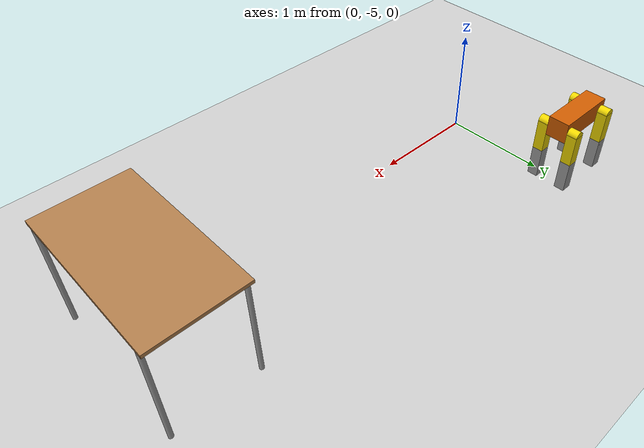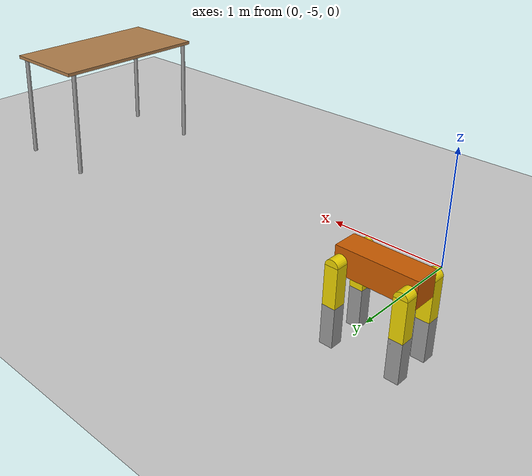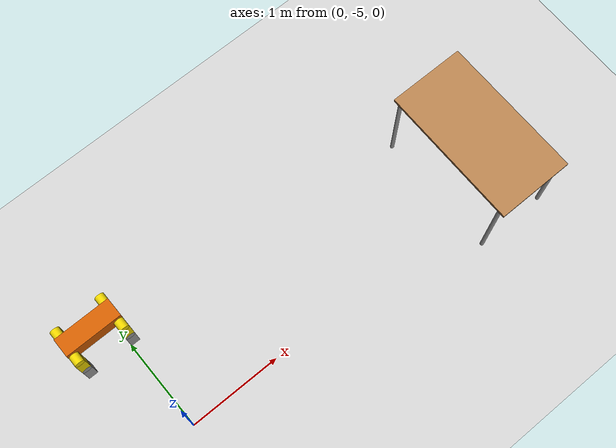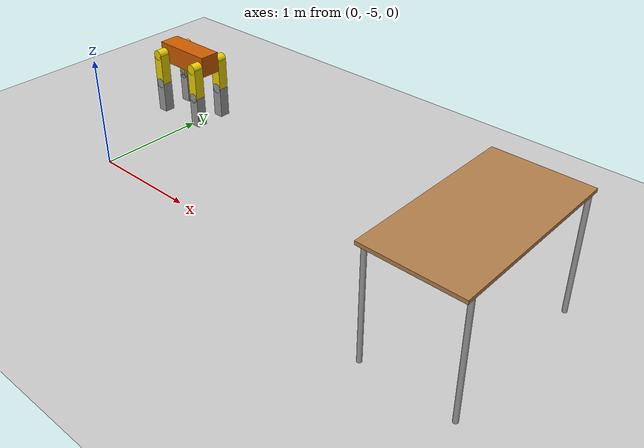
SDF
<sdf version="1.6">
 <world name="default">
  <model name="ground_plane">
   <static>1</static>
   <link name="link">
    <collision name="collision">
     <geometry><plane><normal>0 0 1</normal><size>100 100</size></plane></geometry>
     <surface>
      <contact><collide_bitmask>65535</collide_bitmask></contact>
      <friction><ode><mu>100</mu><mu2>50</mu2></ode></friction>
     </surface>
    </collision>
    <visual name="visual">
     <cast_shadows>0</cast_shadows>
     <geometry><plane><normal>0 0 1</normal><size>100 100</size></plane></geometry>
     <material>
      <script><uri>file://media/materials/scripts/gazebo.material</uri><name>Gazebo/Grey</name></script>
     </material>
    </visual>
   </link>
  </model>
  <model name="dog_robot_clone">
   <link name="link_0">
    <inertial>
     <mass>28.2</mass>
     <inertia><ixx>0.188</ixx><ixy>0</ixy><ixz>0</ixz><iyy>0.94</iyy><iyz>0</iyz><izz>0.94</izz></inertia>
    </inertial>
    <pose>1.24337 -0.641078 0.247843 0 -0 0</pose>
    <visual name="visual">
     <geometry><box><size>0.6 0.2 0.2</size></box></geometry>
     <material>
      <lighting>1</lighting>
      <script><uri>file://media/materials/scripts/gazebo.material</uri><name>Gazebo/Grey</name></script>
      <shader type="pixel"><normal_map>__default__</normal_map></shader>
      <ambient>0.808 0.361 0 1</ambient>
      <diffuse>0.808 0.361 0 1</diffuse>
      <specular>0.808 0.361 0 1</specular>
      <emissive>0 0 0 1</emissive>
     </material>
    </visual>
    <collision name="collision">
     <geometry><box><size>0.6 0.2 0.2</size></box></geometry>
     <surface>
      <friction>
       <ode><mu>1</mu><mu2>1</mu2><fdir1>0 0 0</fdir1><slip1>0</slip1><slip2>0</slip2></ode>
       <torsional>
        <coefficient>1</coefficient>
        <patch_radius>0</patch_radius>
        <surface_radius>0</surface_radius>
        <use_patch_radius>1</use_patch_radius>
        <ode><slip>0</slip></ode>
       </torsional>
      </friction>
      <bounce><restitution_coefficient>0</restitution_coefficient><threshold>1e+06</threshold></bounce>
      <contact>
       <collide_without_contact>0</collide_without_contact>
       <collide_without_contact_bitmask>1</collide_without_contact_bitmask>
       <collide_bitmask>1</collide_bitmask>
       <ode>
        <soft_cfm>0</soft_cfm>
        <soft_erp>0.2</soft_erp>
        <kp>1e+13</kp>
        <kd>1</kd>
        <max_vel>0.01</max_vel>
        <min_depth>0</min_depth>
       </ode>
       <bullet>
        <split_impulse>1</split_impulse>
        <split_impulse_penetration_threshold>-0.01</split_impulse_penetration_threshold>
        <soft_cfm>0</soft_cfm>
        <soft_erp>0.2</soft_erp>
        <kp>1e+13</kp>
        <kd>1</kd>
       </bullet>
      </contact>
     </surface>
    </collision>
   </link>
   <link name="link_1">
    <inertial>
     <mass>0.922843</mass>
     <inertia>
      <ixx>0.00134581</ixx>
      <ixy>0</ixy>
      <ixz>0</ixz>
      <iyy>0.00134581</iyy>
      <iyz>0</iyz>
      <izz>0.00115355</izz>
     </inertia>
    </inertial>
    <pose>1.49337 -0.791078 0.247843 1.5707 -0 0</pose>
    <visual name="visual">
     <geometry><cylinder><radius>0.05</radius><length>0.1</length></cylinder></geometry>
     <material>
      <lighting>1</lighting>
      <script><uri>file://media/materials/scripts/gazebo.material</uri><name>Gazebo/Grey</name></script>
      <shader type="pixel"><normal_map>__default__</normal_map></shader>
      <ambient>0.929 0.831 0 1</ambient>
      <diffuse>0.929 0.831 0 1</diffuse>
      <specular>0.929 0.831 0 1</specular>
      <emissive>0 0 0 1</emissive>
     </material>
    </visual>
    <collision name="collision">
     <geometry><cylinder><radius>0.05</radius><length>0.1</length></cylinder></geometry>
     <surface>
      <friction>
       <ode><mu>1</mu><mu2>1</mu2><fdir1>0 0 0</fdir1><slip1>0</slip1><slip2>0</slip2></ode>
       <torsional>
        <coefficient>1</coefficient>
        <patch_radius>0</patch_radius>
        <surface_radius>0</surface_radius>
        <use_patch_radius>1</use_patch_radius>
        <ode><slip>0</slip></ode>
       </torsional>
      </friction>
      <bounce><restitution_coefficient>0</restitution_coefficient><threshold>1e+06</threshold></bounce>
      <contact>
       <collide_without_contact>0</collide_without_contact>
       <collide_without_contact_bitmask>1</collide_without_contact_bitmask>
       <collide_bitmask>1</collide_bitmask>
       <ode>
        <soft_cfm>0</soft_cfm>
        <soft_erp>0.2</soft_erp>
        <kp>1e+13</kp>
        <kd>1</kd>
        <max_vel>0.01</max_vel>
        <min_depth>0</min_depth>
       </ode>
       <bullet>
        <split_impulse>1</split_impulse>
        <split_impulse_penetration_threshold>-0.01</split_impulse_penetration_threshold>
        <soft_cfm>0</soft_cfm>
        <soft_erp>0.2</soft_erp>
        <kp>1e+13</kp>
        <kd>1</kd>
       </bullet>
      </contact>
     </surface>
    </collision>
   </link>
   <link name="link_1_clone">
    <inertial>
     <mass>0.922843</mass>
     <inertia>
      <ixx>0.00134581</ixx>
      <ixy>0</ixy>
      <ixz>0</ixz>
      <iyy>0.00134581</iyy>
      <iyz>0</iyz>
      <izz>0.00115355</izz>
     </inertia>
    </inertial>
    <pose>0.993372 -0.491078 0.247843 1.5707 -0 0</pose>
    <visual name="visual">
     <geometry><cylinder><radius>0.05</radius><length>0.1</length></cylinder></geometry>
     <material>
      <lighting>1</lighting>
      <script><uri>file://media/materials/scripts/gazebo.material</uri><name>Gazebo/Grey</name></script>
      <shader type="pixel"><normal_map>__default__</normal_map></shader>
      <ambient>0.929 0.831 0 1</ambient>
      <diffuse>0.929 0.831 0 1</diffuse>
      <specular>0.929 0.831 0 1</specular>
      <emissive>0 0 0 1</emissive>
     </material>
    </visual>
    <collision name="collision">
     <geometry><cylinder><radius>0.05</radius><length>0.1</length></cylinder></geometry>
     <surface>
      <friction>
       <ode><mu>1</mu><mu2>1</mu2><fdir1>0 0 0</fdir1><slip1>0</slip1><slip2>0</slip2></ode>
       <torsional>
        <coefficient>1</coefficient>
        <patch_radius>0</patch_radius>
        <surface_radius>0</surface_radius>
        <use_patch_radius>1</use_patch_radius>
        <ode><slip>0</slip></ode>
       </torsional>
      </friction>
      <bounce><restitution_coefficient>0</restitution_coefficient><threshold>1e+06</threshold></bounce>
      <contact>
       <collide_without_contact>0</collide_without_contact>
       <collide_without_contact_bitmask>1</collide_without_contact_bitmask>
       <collide_bitmask>1</collide_bitmask>
       <ode>
        <soft_cfm>0</soft_cfm>
        <soft_erp>0.2</soft_erp>
        <kp>1e+13</kp>
        <kd>1</kd>
        <max_vel>0.01</max_vel>
        <min_depth>0</min_depth>
       </ode>
       <bullet>
        <split_impulse>1</split_impulse>
        <split_impulse_penetration_threshold>-0.01</split_impulse_penetration_threshold>
        <soft_cfm>0</soft_cfm>
        <soft_erp>0.2</soft_erp>
        <kp>1e+13</kp>
        <kd>1</kd>
       </bullet>
      </contact>
     </surface>
    </collision>
   </link>
   <link name="link_1_clone_0">
    <inertial>
     <mass>0.922843</mass>
     <inertia>
      <ixx>0.00134581</ixx>
      <ixy>0</ixy>
      <ixz>0</ixz>
      <iyy>0.00134581</iyy>
      <iyz>0</iyz>
      <izz>0.00115355</izz>
     </inertia>
    </inertial>
    <pose>0.993372 -0.791078 0.247843 1.5707 -0 0</pose>
    <visual name="visual">
     <geometry><cylinder><radius>0.05</radius><length>0.1</length></cylinder></geometry>
     <material>
      <lighting>1</lighting>
      <script><uri>file://media/materials/scripts/gazebo.material</uri><name>Gazebo/Grey</name></script>
      <shader type="pixel"><normal_map>__default__</normal_map></shader>
      <ambient>0.929 0.831 0 1</ambient>
      <diffuse>0.929 0.831 0 1</diffuse>
      <specular>0.929 0.831 0 1</specular>
      <emissive>0 0 0 1</emissive>
     </material>
    </visual>
    <collision name="collision">
     <geometry><cylinder><radius>0.05</radius><length>0.1</length></cylinder></geometry>
     <surface>
      <friction>
       <ode><mu>1</mu><mu2>1</mu2><fdir1>0 0 0</fdir1><slip1>0</slip1><slip2>0</slip2></ode>
       <torsional>
        <coefficient>1</coefficient>
        <patch_radius>0</patch_radius>
        <surface_radius>0</surface_radius>
        <use_patch_radius>1</use_patch_radius>
        <ode><slip>0</slip></ode>
       </torsional>
      </friction>
      <bounce><restitution_coefficient>0</restitution_coefficient><threshold>1e+06</threshold></bounce>
      <contact>
       <collide_without_contact>0</collide_without_contact>
       <collide_without_contact_bitmask>1</collide_without_contact_bitmask>
       <collide_bitmask>1</collide_bitmask>
       <ode>
        <soft_cfm>0</soft_cfm>
        <soft_erp>0.2</soft_erp>
        <kp>1e+13</kp>
        <kd>1</kd>
        <max_vel>0.01</max_vel>
        <min_depth>0</min_depth>
       </ode>
       <bullet>
        <split_impulse>1</split_impulse>
        <split_impulse_penetration_threshold>-0.01</split_impulse_penetration_threshold>
        <soft_cfm>0</soft_cfm>
        <soft_erp>0.2</soft_erp>
        <kp>1e+13</kp>
        <kd>1</kd>
       </bullet>
      </contact>
     </surface>
    </collision>
   </link>
   <link name="link_1_clone_1">
    <inertial>
     <mass>0.922843</mass>
     <inertia>
      <ixx>0.00134581</ixx>
      <ixy>0</ixy>
      <ixz>0</ixz>
      <iyy>0.00134581</iyy>
      <iyz>0</iyz>
      <izz>0.00115355</izz>
     </inertia>
    </inertial>
    <pose>1.49337 -0.491078 0.247843 1.5707 -0 0</pose>
    <visual name="visual">
     <geometry><cylinder><radius>0.05</radius><length>0.1</length></cylinder></geometry>
     <material>
      <lighting>1</lighting>
      <script><uri>file://media/materials/scripts/gazebo.material</uri><name>Gazebo/Grey</name></script>
      <shader type="pixel"><normal_map>__default__</normal_map></shader>
      <ambient>0.929 0.831 0 1</ambient>
      <diffuse>0.929 0.831 0 1</diffuse>
      <specular>0.929 0.831 0 1</specular>
      <emissive>0 0 0 1</emissive>
     </material>
    </visual>
    <collision name="collision">
     <geometry><cylinder><radius>0.05</radius><length>0.1</length></cylinder></geometry>
     <surface>
      <friction>
       <ode><mu>1</mu><mu2>1</mu2><fdir1>0 0 0</fdir1><slip1>0</slip1><slip2>0</slip2></ode>
       <torsional>
        <coefficient>1</coefficient>
        <patch_radius>0</patch_radius>
        <surface_radius>0</surface_radius>
        <use_patch_radius>1</use_patch_radius>
        <ode><slip>0</slip></ode>
       </torsional>
      </friction>
      <bounce><restitution_coefficient>0</restitution_coefficient><threshold>1e+06</threshold></bounce>
      <contact>
       <collide_without_contact>0</collide_without_contact>
       <collide_without_contact_bitmask>1</collide_without_contact_bitmask>
       <collide_bitmask>1</collide_bitmask>
       <ode>
        <soft_cfm>0</soft_cfm>
        <soft_erp>0.2</soft_erp>
        <kp>1e+13</kp>
        <kd>1</kd>
        <max_vel>0.01</max_vel>
        <min_depth>0</min_depth>
       </ode>
       <bullet>
        <split_impulse>1</split_impulse>
        <split_impulse_penetration_threshold>-0.01</split_impulse_penetration_threshold>
        <soft_cfm>0</soft_cfm>
        <soft_erp>0.2</soft_erp>
        <kp>1e+13</kp>
        <kd>1</kd>
       </bullet>
      </contact>
     </surface>
    </collision>
   </link>
   <link name="link_2">
    <inertial>
     <mass>3.525</mass>
     <inertia>
      <ixx>0.029375</ixx>
      <ixy>0</ixy>
      <ixz>0</ixz>
      <iyy>0.005875</iyy>
      <iyz>0</iyz>
      <izz>0.029375</izz>
     </inertia>
    </inertial>
    <pose>1.49337 -0.791092 0.097844 1.5707 -0 0</pose>
    <visual name="visual">
     <geometry><box><size>0.1 0.3 0.1</size></box></geometry>
     <material>
      <lighting>1</lighting>
      <script><uri>file://media/materials/scripts/gazebo.material</uri><name>Gazebo/Grey</name></script>
      <shader type="pixel"><normal_map>__default__</normal_map></shader>
      <ambient>0.929 0.831 0 1</ambient>
      <diffuse>0.929 0.831 0 1</diffuse>
      <specular>0.929 0.831 0 1</specular>
      <emissive>0 0 0 1</emissive>
     </material>
    </visual>
    <collision name="collision">
     <geometry><box><size>0.1 0.3 0.1</size></box></geometry>
     <surface>
      <friction>
       <ode><mu>1</mu><mu2>1</mu2><fdir1>0 0 0</fdir1><slip1>0</slip1><slip2>0</slip2></ode>
       <torsional>
        <coefficient>1</coefficient>
        <patch_radius>0</patch_radius>
        <surface_radius>0</surface_radius>
        <use_patch_radius>1</use_patch_radius>
        <ode><slip>0</slip></ode>
       </torsional>
      </friction>
      <bounce><restitution_coefficient>0</restitution_coefficient><threshold>1e+06</threshold></bounce>
      <contact>
       <collide_without_contact>0</collide_without_contact>
       <collide_without_contact_bitmask>1</collide_without_contact_bitmask>
       <collide_bitmask>1</collide_bitmask>
       <ode>
        <soft_cfm>0</soft_cfm>
        <soft_erp>0.2</soft_erp>
        <kp>1e+13</kp>
        <kd>1</kd>
        <max_vel>0.01</max_vel>
        <min_depth>0</min_depth>
       </ode>
       <bullet>
        <split_impulse>1</split_impulse>
        <split_impulse_penetration_threshold>-0.01</split_impulse_penetration_threshold>
        <soft_cfm>0</soft_cfm>
        <soft_erp>0.2</soft_erp>
        <kp>1e+13</kp>
        <kd>1</kd>
       </bullet>
      </contact>
     </surface>
    </collision>
   </link>
   <link name="link_2_clone">
    <inertial>
     <mass>3.525</mass>
     <inertia>
      <ixx>0.029375</ixx>
      <ixy>0</ixy>
      <ixz>0</ixz>
      <iyy>0.005875</iyy>
      <iyz>0</iyz>
      <izz>0.029375</izz>
     </inertia>
    </inertial>
    <pose>0.993372 -0.491092 0.097844 1.5707 -0 0</pose>
    <visual name="visual">
     <geometry><box><size>0.1 0.3 0.1</size></box></geometry>
     <material>
      <lighting>1</lighting>
      <script><uri>file://media/materials/scripts/gazebo.material</uri><name>Gazebo/Grey</name></script>
      <shader type="pixel"><normal_map>__default__</normal_map></shader>
      <ambient>0.929 0.831 0 1</ambient>
      <diffuse>0.929 0.831 0 1</diffuse>
      <specular>0.929 0.831 0 1</specular>
      <emissive>0 0 0 1</emissive>
     </material>
    </visual>
    <collision name="collision">
     <geometry><box><size>0.1 0.3 0.1</size></box></geometry>
     <surface>
      <friction>
       <ode><mu>1</mu><mu2>1</mu2><fdir1>0 0 0</fdir1><slip1>0</slip1><slip2>0</slip2></ode>
       <torsional>
        <coefficient>1</coefficient>
        <patch_radius>0</patch_radius>
        <surface_radius>0</surface_radius>
        <use_patch_radius>1</use_patch_radius>
        <ode><slip>0</slip></ode>
       </torsional>
      </friction>
      <bounce><restitution_coefficient>0</restitution_coefficient><threshold>1e+06</threshold></bounce>
      <contact>
       <collide_without_contact>0</collide_without_contact>
       <collide_without_contact_bitmask>1</collide_without_contact_bitmask>
       <collide_bitmask>1</collide_bitmask>
       <ode>
        <soft_cfm>0</soft_cfm>
        <soft_erp>0.2</soft_erp>
        <kp>1e+13</kp>
        <kd>1</kd>
        <max_vel>0.01</max_vel>
        <min_depth>0</min_depth>
       </ode>
       <bullet>
        <split_impulse>1</split_impulse>
        <split_impulse_penetration_threshold>-0.01</split_impulse_penetration_threshold>
        <soft_cfm>0</soft_cfm>
        <soft_erp>0.2</soft_erp>
        <kp>1e+13</kp>
        <kd>1</kd>
       </bullet>
      </contact>
     </surface>
    </collision>
   </link>
   <link name="link_2_clone_0">
    <inertial>
     <mass>3.525</mass>
     <inertia>
      <ixx>0.029375</ixx>
      <ixy>0</ixy>
      <ixz>0</ixz>
      <iyy>0.005875</iyy>
      <iyz>0</iyz>
      <izz>0.029375</izz>
     </inertia>
    </inertial>
    <pose>1.49337 -0.491092 0.097844 1.5707 -0 0</pose>
    <visual name="visual">
     <geometry><box><size>0.1 0.3 0.1</size></box></geometry>
     <material>
      <lighting>1</lighting>
      <script><uri>file://media/materials/scripts/gazebo.material</uri><name>Gazebo/Grey</name></script>
      <shader type="pixel"><normal_map>__default__</normal_map></shader>
      <ambient>0.929 0.831 0 1</ambient>
      <diffuse>0.929 0.831 0 1</diffuse>
      <specular>0.929 0.831 0 1</specular>
      <emissive>0 0 0 1</emissive>
     </material>
    </visual>
    <collision name="collision">
     <geometry><box><size>0.1 0.3 0.1</size></box></geometry>
     <surface>
      <friction>
       <ode><mu>1</mu><mu2>1</mu2><fdir1>0 0 0</fdir1><slip1>0</slip1><slip2>0</slip2></ode>
       <torsional>
        <coefficient>1</coefficient>
        <patch_radius>0</patch_radius>
        <surface_radius>0</surface_radius>
        <use_patch_radius>1</use_patch_radius>
        <ode><slip>0</slip></ode>
       </torsional>
      </friction>
      <bounce><restitution_coefficient>0</restitution_coefficient><threshold>1e+06</threshold></bounce>
      <contact>
       <collide_without_contact>0</collide_without_contact>
       <collide_without_contact_bitmask>1</collide_without_contact_bitmask>
       <collide_bitmask>1</collide_bitmask>
       <ode>
        <soft_cfm>0</soft_cfm>
        <soft_erp>0.2</soft_erp>
        <kp>1e+13</kp>
        <kd>1</kd>
        <max_vel>0.01</max_vel>
        <min_depth>0</min_depth>
       </ode>
       <bullet>
        <split_impulse>1</split_impulse>
        <split_impulse_penetration_threshold>-0.01</split_impulse_penetration_threshold>
        <soft_cfm>0</soft_cfm>
        <soft_erp>0.2</soft_erp>
        <kp>1e+13</kp>
        <kd>1</kd>
       </bullet>
      </contact>
     </surface>
    </collision>
   </link>
   <link name="link_2_clone_1">
    <inertial>
     <mass>3.525</mass>
     <inertia>
      <ixx>0.029375</ixx>
      <ixy>0</ixy>
      <ixz>0</ixz>
      <iyy>0.005875</iyy>
      <iyz>0</iyz>
      <izz>0.029375</izz>
     </inertia>
    </inertial>
    <pose>0.993372 -0.791092 0.097844 1.5707 -0 0</pose>
    <visual name="visual">
     <geometry><box><size>0.1 0.3 0.1</size></box></geometry>
     <material>
      <lighting>1</lighting>
      <script><uri>file://media/materials/scripts/gazebo.material</uri><name>Gazebo/Grey</name></script>
      <shader type="pixel"><normal_map>__default__</normal_map></shader>
      <ambient>0.929 0.831 0 1</ambient>
      <diffuse>0.929 0.831 0 1</diffuse>
      <specular>0.929 0.831 0 1</specular>
      <emissive>0 0 0 1</emissive>
     </material>
    </visual>
    <collision name="collision">
     <geometry><box><size>0.1 0.3 0.1</size></box></geometry>
     <surface>
      <friction>
       <ode><mu>1</mu><mu2>1</mu2><fdir1>0 0 0</fdir1><slip1>0</slip1><slip2>0</slip2></ode>
       <torsional>
        <coefficient>1</coefficient>
        <patch_radius>0</patch_radius>
        <surface_radius>0</surface_radius>
        <use_patch_radius>1</use_patch_radius>
        <ode><slip>0</slip></ode>
       </torsional>
      </friction>
      <bounce><restitution_coefficient>0</restitution_coefficient><threshold>1e+06</threshold></bounce>
      <contact>
       <collide_without_contact>0</collide_without_contact>
       <collide_without_contact_bitmask>1</collide_without_contact_bitmask>
       <collide_bitmask>1</collide_bitmask>
       <ode>
        <soft_cfm>0</soft_cfm>
        <soft_erp>0.2</soft_erp>
        <kp>1e+13</kp>
        <kd>1</kd>
        <max_vel>0.01</max_vel>
        <min_depth>0</min_depth>
       </ode>
       <bullet>
        <split_impulse>1</split_impulse>
        <split_impulse_penetration_threshold>-0.01</split_impulse_penetration_threshold>
        <soft_cfm>0</soft_cfm>
        <soft_erp>0.2</soft_erp>
        <kp>1e+13</kp>
        <kd>1</kd>
       </bullet>
      </contact>
     </surface>
    </collision>
   </link>
   <link name="link_2_clone_2">
    <inertial>
     <mass>3.525</mass>
     <inertia>
      <ixx>0.029375</ixx>
      <ixy>0</ixy>
      <ixz>0</ixz>
      <iyy>0.005875</iyy>
      <iyz>0</iyz>
      <izz>0.029375</izz>
     </inertia>
    </inertial>
    <pose>1.49337 -0.791121 -0.202156 1.5707 -0 0</pose>
    <visual name="visual">
     <geometry><box><size>0.1 0.3 0.1</size></box></geometry>
     <material>
      <lighting>1</lighting>
      <script><uri>file://media/materials/scripts/gazebo.material</uri><name>Gazebo/Grey</name></script>
      <shader type="pixel"><normal_map>__default__</normal_map></shader>
      <ambient>0.3 0.3 0.3 1</ambient>
      <diffuse>0.7 0.7 0.7 1</diffuse>
      <specular>0.01 0.01 0.01 1</specular>
      <emissive>0 0 0 1</emissive>
     </material>
    </visual>
    <collision name="collision">
     <geometry><box><size>0.1 0.3 0.1</size></box></geometry>
     <surface>
      <friction>
       <ode><mu>1</mu><mu2>1</mu2><fdir1>0 0 0</fdir1><slip1>0</slip1><slip2>0</slip2></ode>
       <torsional>
        <coefficient>1</coefficient>
        <patch_radius>0</patch_radius>
        <surface_radius>0</surface_radius>
        <use_patch_radius>1</use_patch_radius>
        <ode><slip>0</slip></ode>
       </torsional>
      </friction>
      <bounce><restitution_coefficient>0</restitution_coefficient><threshold>1e+06</threshold></bounce>
      <contact>
       <collide_without_contact>0</collide_without_contact>
       <collide_without_contact_bitmask>1</collide_without_contact_bitmask>
       <collide_bitmask>1</collide_bitmask>
       <ode>
        <soft_cfm>0</soft_cfm>
        <soft_erp>0.2</soft_erp>
        <kp>1e+13</kp>
        <kd>1</kd>
        <max_vel>0.01</max_vel>
        <min_depth>0</min_depth>
       </ode>
       <bullet>
        <split_impulse>1</split_impulse>
        <split_impulse_penetration_threshold>-0.01</split_impulse_penetration_threshold>
        <soft_cfm>0</soft_cfm>
        <soft_erp>0.2</soft_erp>
        <kp>1e+13</kp>
        <kd>1</kd>
       </bullet>
      </contact>
     </surface>
    </collision>
   </link>
   <link name="link_2_clone_3">
    <inertial>
     <mass>3.525</mass>
     <inertia>
      <ixx>0.029375</ixx>
      <ixy>0</ixy>
      <ixz>0</ixz>
      <iyy>0.005875</iyy>
      <iyz>0</iyz>
      <izz>0.029375</izz>
     </inertia>
    </inertial>
    <pose>0.993372 -0.491121 -0.202156 1.5707 -0 0</pose>
    <visual name="visual">
     <geometry><box><size>0.1 0.3 0.1</size></box></geometry>
     <material>
      <lighting>1</lighting>
      <script><uri>file://media/materials/scripts/gazebo.material</uri><name>Gazebo/Grey</name></script>
      <shader type="pixel"><normal_map>__default__</normal_map></shader>
      <ambient>0.3 0.3 0.3 1</ambient>
      <diffuse>0.7 0.7 0.7 1</diffuse>
      <specular>0.01 0.01 0.01 1</specular>
      <emissive>0 0 0 1</emissive>
     </material>
    </visual>
    <collision name="collision">
     <geometry><box><size>0.1 0.3 0.1</size></box></geometry>
     <surface>
      <friction>
       <ode><mu>1</mu><mu2>1</mu2><fdir1>0 0 0</fdir1><slip1>0</slip1><slip2>0</slip2></ode>
       <torsional>
        <coefficient>1</coefficient>
        <patch_radius>0</patch_radius>
        <surface_radius>0</surface_radius>
        <use_patch_radius>1</use_patch_radius>
        <ode><slip>0</slip></ode>
       </torsional>
      </friction>
      <bounce><restitution_coefficient>0</restitution_coefficient><threshold>1e+06</threshold></bounce>
      <contact>
       <collide_without_contact>0</collide_without_contact>
       <collide_without_contact_bitmask>1</collide_without_contact_bitmask>
       <collide_bitmask>1</collide_bitmask>
       <ode>
        <soft_cfm>0</soft_cfm>
        <soft_erp>0.2</soft_erp>
        <kp>1e+13</kp>
        <kd>1</kd>
        <max_vel>0.01</max_vel>
        <min_depth>0</min_depth>
       </ode>
       <bullet>
        <split_impulse>1</split_impulse>
        <split_impulse_penetration_threshold>-0.01</split_impulse_penetration_threshold>
        <soft_cfm>0</soft_cfm>
        <soft_erp>0.2</soft_erp>
        <kp>1e+13</kp>
        <kd>1</kd>
       </bullet>
      </contact>
     </surface>
    </collision>
   </link>
   <link name="link_2_clone_4">
    <inertial>
     <mass>3.525</mass>
     <inertia>
      <ixx>0.029375</ixx>
      <ixy>0</ixy>
      <ixz>0</ixz>
      <iyy>0.005875</iyy>
      <iyz>0</iyz>
      <izz>0.029375</izz>
     </inertia>
    </inertial>
    <pose>1.49337 -0.491121 -0.202156 1.5707 -0 0</pose>
    <visual name="visual">
     <geometry><box><size>0.1 0.3 0.1</size></box></geometry>
     <material>
      <lighting>1</lighting>
      <script><uri>file://media/materials/scripts/gazebo.material</uri><name>Gazebo/Grey</name></script>
      <shader type="pixel"><normal_map>__default__</normal_map></shader>
      <ambient>0.3 0.3 0.3 1</ambient>
      <diffuse>0.7 0.7 0.7 1</diffuse>
      <specular>0.01 0.01 0.01 1</specular>
      <emissive>0 0 0 1</emissive>
     </material>
    </visual>
    <collision name="collision">
     <geometry><box><size>0.1 0.3 0.1</size></box></geometry>
     <surface>
      <friction>
       <ode><mu>1</mu><mu2>1</mu2><fdir1>0 0 0</fdir1><slip1>0</slip1><slip2>0</slip2></ode>
       <torsional>
        <coefficient>1</coefficient>
        <patch_radius>0</patch_radius>
        <surface_radius>0</surface_radius>
        <use_patch_radius>1</use_patch_radius>
        <ode><slip>0</slip></ode>
       </torsional>
      </friction>
      <bounce><restitution_coefficient>0</restitution_coefficient><threshold>1e+06</threshold></bounce>
      <contact>
       <collide_without_contact>0</collide_without_contact>
       <collide_without_contact_bitmask>1</collide_without_contact_bitmask>
       <collide_bitmask>1</collide_bitmask>
       <ode>
        <soft_cfm>0</soft_cfm>
        <soft_erp>0.2</soft_erp>
        <kp>1e+13</kp>
        <kd>1</kd>
        <max_vel>0.01</max_vel>
        <min_depth>0</min_depth>
       </ode>
       <bullet>
        <split_impulse>1</split_impulse>
        <split_impulse_penetration_threshold>-0.01</split_impulse_penetration_threshold>
        <soft_cfm>0</soft_cfm>
        <soft_erp>0.2</soft_erp>
        <kp>1e+13</kp>
        <kd>1</kd>
       </bullet>
      </contact>
     </surface>
    </collision>
   </link>
   <link name="link_2_clone_5">
    <inertial>
     <mass>3.525</mass>
     <inertia>
      <ixx>0.029375</ixx>
      <ixy>0</ixy>
      <ixz>0</ixz>
      <iyy>0.005875</iyy>
      <iyz>0</iyz>
      <izz>0.029375</izz>
     </inertia>
    </inertial>
    <pose>0.993372 -0.791121 -0.202156 1.5707 -0 0</pose>
    <visual name="visual">
     <geometry><box><size>0.1 0.3 0.1</size></box></geometry>
     <material>
      <lighting>1</lighting>
      <script><uri>file://media/materials/scripts/gazebo.material</uri><name>Gazebo/Grey</name></script>
      <shader type="pixel"><normal_map>__default__</normal_map></shader>
      <ambient>0.3 0.3 0.3 1</ambient>
      <diffuse>0.7 0.7 0.7 1</diffuse>
      <specular>0.01 0.01 0.01 1</specular>
      <emissive>0 0 0 1</emissive>
     </material>
    </visual>
    <collision name="collision">
     <geometry><box><size>0.1 0.3 0.1</size></box></geometry>
     <surface>
      <friction>
       <ode><mu>1</mu><mu2>1</mu2><fdir1>0 0 0</fdir1><slip1>0</slip1><slip2>0</slip2></ode>
       <torsional>
        <coefficient>1</coefficient>
        <patch_radius>0</patch_radius>
        <surface_radius>0</surface_radius>
        <use_patch_radius>1</use_patch_radius>
        <ode><slip>0</slip></ode>
       </torsional>
      </friction>
      <bounce><restitution_coefficient>0</restitution_coefficient><threshold>1e+06</threshold></bounce>
      <contact>
       <collide_without_contact>0</collide_without_contact>
       <collide_without_contact_bitmask>1</collide_without_contact_bitmask>
       <collide_bitmask>1</collide_bitmask>
       <ode>
        <soft_cfm>0</soft_cfm>
        <soft_erp>0.2</soft_erp>
        <kp>1e+13</kp>
        <kd>1</kd>
        <max_vel>0.01</max_vel>
        <min_depth>0</min_depth>
       </ode>
       <bullet>
        <split_impulse>1</split_impulse>
        <split_impulse_penetration_threshold>-0.01</split_impulse_penetration_threshold>
        <soft_cfm>0</soft_cfm>
        <soft_erp>0.2</soft_erp>
        <kp>1e+13</kp>
        <kd>1</kd>
       </bullet>
      </contact>
     </surface>
    </collision>
   </link>
   <link name="link_3">
    <inertial>
     <mass>0.922843</mass>
     <inertia>
      <ixx>0.00134581</ixx>
      <ixy>0</ixy>
      <ixz>0</ixz>
      <iyy>0.00134581</iyy>
      <iyz>0</iyz>
      <izz>0.00115355</izz>
     </inertia>
    </inertial>
    <pose>1.49337 -0.791107 -0.052156 1.5707 -0 0</pose>
    <visual name="visual">
     <geometry><cylinder><radius>0.05</radius><length>0.1</length></cylinder></geometry>
     <material>
      <lighting>1</lighting>
      <script><uri>file://media/materials/scripts/gazebo.material</uri><name>Gazebo/Grey</name></script>
      <shader type="pixel"><normal_map>__default__</normal_map></shader>
      <ambient>0.3 0.3 0.3 1</ambient>
      <diffuse>0.7 0.7 0.7 1</diffuse>
      <specular>0.01 0.01 0.01 1</specular>
      <emissive>0 0 0 1</emissive>
     </material>
    </visual>
    <collision name="collision">
     <geometry><cylinder><radius>0.05</radius><length>0.1</length></cylinder></geometry>
     <surface>
      <friction>
       <ode><mu>1</mu><mu2>1</mu2><fdir1>0 0 0</fdir1><slip1>0</slip1><slip2>0</slip2></ode>
       <torsional>
        <coefficient>1</coefficient>
        <patch_radius>0</patch_radius>
        <surface_radius>0</surface_radius>
        <use_patch_radius>1</use_patch_radius>
        <ode><slip>0</slip></ode>
       </torsional>
      </friction>
      <bounce><restitution_coefficient>0</restitution_coefficient><threshold>1e+06</threshold></bounce>
      <contact>
       <collide_without_contact>0</collide_without_contact>
       <collide_without_contact_bitmask>1</collide_without_contact_bitmask>
       <collide_bitmask>1</collide_bitmask>
       <ode>
        <soft_cfm>0</soft_cfm>
        <soft_erp>0.2</soft_erp>
        <kp>1e+13</kp>
        <kd>1</kd>
        <max_vel>0.01</max_vel>
        <min_depth>0</min_depth>
       </ode>
       <bullet>
        <split_impulse>1</split_impulse>
        <split_impulse_penetration_threshold>-0.01</split_impulse_penetration_threshold>
        <soft_cfm>0</soft_cfm>
        <soft_erp>0.2</soft_erp>
        <kp>1e+13</kp>
        <kd>1</kd>
       </bullet>
      </contact>
     </surface>
    </collision>
   </link>
   <link name="link_3_clone">
    <inertial>
     <mass>0.922843</mass>
     <inertia>
      <ixx>0.00134581</ixx>
      <ixy>0</ixy>
      <ixz>0</ixz>
      <iyy>0.00134581</iyy>
      <iyz>0</iyz>
      <izz>0.00115355</izz>
     </inertia>
    </inertial>
    <pose>0.993372 -0.491107 -0.052156 1.5707 -0 0</pose>
    <visual name="visual">
     <geometry><cylinder><radius>0.05</radius><length>0.1</length></cylinder></geometry>
     <material>
      <lighting>1</lighting>
      <script><uri>file://media/materials/scripts/gazebo.material</uri><name>Gazebo/Grey</name></script>
      <shader type="pixel"><normal_map>__default__</normal_map></shader>
      <ambient>0.3 0.3 0.3 1</ambient>
      <diffuse>0.7 0.7 0.7 1</diffuse>
      <specular>0.01 0.01 0.01 1</specular>
      <emissive>0 0 0 1</emissive>
     </material>
    </visual>
    <collision name="collision">
     <geometry><cylinder><radius>0.05</radius><length>0.1</length></cylinder></geometry>
     <surface>
      <friction>
       <ode><mu>1</mu><mu2>1</mu2><fdir1>0 0 0</fdir1><slip1>0</slip1><slip2>0</slip2></ode>
       <torsional>
        <coefficient>1</coefficient>
        <patch_radius>0</patch_radius>
        <surface_radius>0</surface_radius>
        <use_patch_radius>1</use_patch_radius>
        <ode><slip>0</slip></ode>
       </torsional>
      </friction>
      <bounce><restitution_coefficient>0</restitution_coefficient><threshold>1e+06</threshold></bounce>
      <contact>
       <collide_without_contact>0</collide_without_contact>
       <collide_without_contact_bitmask>1</collide_without_contact_bitmask>
       <collide_bitmask>1</collide_bitmask>
       <ode>
        <soft_cfm>0</soft_cfm>
        <soft_erp>0.2</soft_erp>
        <kp>1e+13</kp>
        <kd>1</kd>
        <max_vel>0.01</max_vel>
        <min_depth>0</min_depth>
       </ode>
       <bullet>
        <split_impulse>1</split_impulse>
        <split_impulse_penetration_threshold>-0.01</split_impulse_penetration_threshold>
        <soft_cfm>0</soft_cfm>
        <soft_erp>0.2</soft_erp>
        <kp>1e+13</kp>
        <kd>1</kd>
       </bullet>
      </contact>
     </surface>
    </collision>
   </link>
   <link name="link_3_clone_0">
    <inertial>
     <mass>0.922843</mass>
     <inertia>
      <ixx>0.00134581</ixx>
      <ixy>0</ixy>
      <ixz>0</ixz>
      <iyy>0.00134581</iyy>
      <iyz>0</iyz>
      <izz>0.00115355</izz>
     </inertia>
    </inertial>
    <pose>1.49337 -0.491107 -0.052156 1.5707 -0 0</pose>
    <visual name="visual">
     <geometry><cylinder><radius>0.05</radius><length>0.1</length></cylinder></geometry>
     <material>
      <lighting>1</lighting>
      <script><uri>file://media/materials/scripts/gazebo.material</uri><name>Gazebo/Grey</name></script>
      <shader type="pixel"><normal_map>__default__</normal_map></shader>
      <ambient>0.3 0.3 0.3 1</ambient>
      <diffuse>0.7 0.7 0.7 1</diffuse>
      <specular>0.01 0.01 0.01 1</specular>
      <emissive>0 0 0 1</emissive>
     </material>
    </visual>
    <collision name="collision">
     <geometry><cylinder><radius>0.05</radius><length>0.1</length></cylinder></geometry>
     <surface>
      <friction>
       <ode><mu>1</mu><mu2>1</mu2><fdir1>0 0 0</fdir1><slip1>0</slip1><slip2>0</slip2></ode>
       <torsional>
        <coefficient>1</coefficient>
        <patch_radius>0</patch_radius>
        <surface_radius>0</surface_radius>
        <use_patch_radius>1</use_patch_radius>
        <ode><slip>0</slip></ode>
       </torsional>
      </friction>
      <bounce><restitution_coefficient>0</restitution_coefficient><threshold>1e+06</threshold></bounce>
      <contact>
       <collide_without_contact>0</collide_without_contact>
       <collide_without_contact_bitmask>1</collide_without_contact_bitmask>
       <collide_bitmask>1</collide_bitmask>
       <ode>
        <soft_cfm>0</soft_cfm>
        <soft_erp>0.2</soft_erp>
        <kp>1e+13</kp>
        <kd>1</kd>
        <max_vel>0.01</max_vel>
        <min_depth>0</min_depth>
       </ode>
       <bullet>
        <split_impulse>1</split_impulse>
        <split_impulse_penetration_threshold>-0.01</split_impulse_penetration_threshold>
        <soft_cfm>0</soft_cfm>
        <soft_erp>0.2</soft_erp>
        <kp>1e+13</kp>
        <kd>1</kd>
       </bullet>
      </contact>
     </surface>
    </collision>
   </link>
   <link name="link_3_clone_1">
    <inertial>
     <mass>0.922843</mass>
     <inertia>
      <ixx>0.00134581</ixx>
      <ixy>0</ixy>
      <ixz>0</ixz>
      <iyy>0.00134581</iyy>
      <iyz>0</iyz>
      <izz>0.00115355</izz>
     </inertia>
    </inertial>
    <pose>0.993372 -0.791107 -0.052156 1.5707 -0 0</pose>
    <visual name="visual">
     <geometry><cylinder><radius>0.05</radius><length>0.1</length></cylinder></geometry>
     <material>
      <lighting>1</lighting>
      <script><uri>file://media/materials/scripts/gazebo.material</uri><name>Gazebo/Grey</name></script>
      <shader type="pixel"><normal_map>__default__</normal_map></shader>
      <ambient>0.3 0.3 0.3 1</ambient>
      <diffuse>0.7 0.7 0.7 1</diffuse>
      <specular>0.01 0.01 0.01 1</specular>
      <emissive>0 0 0 1</emissive>
     </material>
    </visual>
    <collision name="collision">
     <geometry><cylinder><radius>0.05</radius><length>0.1</length></cylinder></geometry>
     <surface>
      <friction>
       <ode><mu>1</mu><mu2>1</mu2><fdir1>0 0 0</fdir1><slip1>0</slip1><slip2>0</slip2></ode>
       <torsional>
        <coefficient>1</coefficient>
        <patch_radius>0</patch_radius>
        <surface_radius>0</surface_radius>
        <use_patch_radius>1</use_patch_radius>
        <ode><slip>0</slip></ode>
       </torsional>
      </friction>
      <bounce><restitution_coefficient>0</restitution_coefficient><threshold>1e+06</threshold></bounce>
      <contact>
       <collide_without_contact>0</collide_without_contact>
       <collide_without_contact_bitmask>1</collide_without_contact_bitmask>
       <collide_bitmask>1</collide_bitmask>
       <ode>
        <soft_cfm>0</soft_cfm>
        <soft_erp>0.2</soft_erp>
        <kp>1e+13</kp>
        <kd>1</kd>
        <max_vel>0.01</max_vel>
        <min_depth>0</min_depth>
       </ode>
       <bullet>
        <split_impulse>1</split_impulse>
        <split_impulse_penetration_threshold>-0.01</split_impulse_penetration_threshold>
        <soft_cfm>0</soft_cfm>
        <soft_erp>0.2</soft_erp>
        <kp>1e+13</kp>
        <kd>1</kd>
       </bullet>
      </contact>
     </surface>
    </collision>
   </link>
   <joint name="link_0_JOINT_0" type="revolute">
    <parent>link_0</parent>
    <child>link_1</child>
    <axis>
     <xyz>0 0 1</xyz>
     <limit>
      <lower>-1.79769e+308</lower>
      <upper>1.79769e+308</upper>
      <effort>-1</effort>
      <velocity>-1</velocity>
     </limit>
     <dynamics>
      <spring_reference>0</spring_reference>
      <spring_stiffness>0</spring_stiffness>
      <damping>0</damping>
      <friction>0</friction>
     </dynamics>
     <use_parent_model_frame>0</use_parent_model_frame>
    </axis>
    <physics>
     <ode><limit><cfm>0</cfm><erp>0.2</erp></limit><suspension><cfm>0</cfm><erp>0.2</erp></suspension></ode>
    </physics>
   </joint>
   <joint name="link_0_JOINT_1" type="revolute">
    <parent>link_0</parent>
    <child>link_1_clone_1</child>
    <axis>
     <xyz>0 0 1</xyz>
     <limit>
      <lower>-1.79769e+308</lower>
      <upper>1.79769e+308</upper>
      <effort>-1</effort>
      <velocity>-1</velocity>
     </limit>
     <dynamics>
      <spring_reference>0</spring_reference>
      <spring_stiffness>0</spring_stiffness>
      <damping>0</damping>
      <friction>0</friction>
     </dynamics>
     <use_parent_model_frame>0</use_parent_model_frame>
    </axis>
    <physics>
     <ode><limit><cfm>0</cfm><erp>0.2</erp></limit><suspension><cfm>0</cfm><erp>0.2</erp></suspension></ode>
    </physics>
   </joint>
   <joint name="link_0_JOINT_2" type="revolute">
    <parent>link_0</parent>
    <child>link_1_clone_0</child>
    <axis>
     <xyz>0 0 1</xyz>
     <limit>
      <lower>-1.79769e+308</lower>
      <upper>1.79769e+308</upper>
      <effort>-1</effort>
      <velocity>-1</velocity>
     </limit>
     <dynamics>
      <spring_reference>0</spring_reference>
      <spring_stiffness>0</spring_stiffness>
      <damping>0</damping>
      <friction>0</friction>
     </dynamics>
     <use_parent_model_frame>0</use_parent_model_frame>
    </axis>
    <physics>
     <ode><limit><cfm>0</cfm><erp>0.2</erp></limit><suspension><cfm>0</cfm><erp>0.2</erp></suspension></ode>
    </physics>
   </joint>
   <joint name="link_0_JOINT_3" type="revolute">
    <parent>link_0</parent>
    <child>link_1_clone</child>
    <axis>
     <xyz>0 0 1</xyz>
     <limit>
      <lower>-1.79769e+308</lower>
      <upper>1.79769e+308</upper>
      <effort>-1</effort>
      <velocity>-1</velocity>
     </limit>
     <dynamics>
      <spring_reference>0</spring_reference>
      <spring_stiffness>0</spring_stiffness>
      <damping>0</damping>
      <friction>0</friction>
     </dynamics>
     <use_parent_model_frame>0</use_parent_model_frame>
    </axis>
    <physics>
     <ode><limit><cfm>0</cfm><erp>0.2</erp></limit><suspension><cfm>0</cfm><erp>0.2</erp></suspension></ode>
    </physics>
   </joint>
   <joint name="link_1_JOINT_4" type="fixed">
    <parent>link_1</parent>
    <child>link_2</child>
    <physics>
     <ode><limit><cfm>0</cfm><erp>0.2</erp></limit><suspension><cfm>0</cfm><erp>0.2</erp></suspension></ode>
    </physics>
   </joint>
   <joint name="link_1_clone_0_JOINT_6" type="fixed">
    <parent>link_1_clone_0</parent>
    <child>link_2_clone_1</child>
    <physics>
     <ode><limit><cfm>0</cfm><erp>0.2</erp></limit><suspension><cfm>0</cfm><erp>0.2</erp></suspension></ode>
    </physics>
   </joint>
   <joint name="link_1_clone_1_JOINT_7" type="fixed">
    <parent>link_1_clone_1</parent>
    <child>link_2_clone_0</child>
    <physics>
     <ode><limit><cfm>0</cfm><erp>0.2</erp></limit><suspension><cfm>0</cfm><erp>0.2</erp></suspension></ode>
    </physics>
   </joint>
   <joint name="link_1_clone_JOINT_5" type="fixed">
    <parent>link_1_clone</parent>
    <child>link_2_clone</child>
    <physics>
     <ode><limit><cfm>0</cfm><erp>0.2</erp></limit><suspension><cfm>0</cfm><erp>0.2</erp></suspension></ode>
    </physics>
   </joint>
   <joint name="link_2_JOINT_8" type="revolute">
    <parent>link_2</parent>
    <child>link_3</child>
    <axis>
     <xyz>0 0 1</xyz>
     <limit>
      <lower>-1.79769e+308</lower>
      <upper>1.79769e+308</upper>
      <effort>-1</effort>
      <velocity>-1</velocity>
     </limit>
     <dynamics>
      <spring_reference>0</spring_reference>
      <spring_stiffness>0</spring_stiffness>
      <damping>0</damping>
      <friction>0</friction>
     </dynamics>
     <use_parent_model_frame>0</use_parent_model_frame>
    </axis>
    <physics>
     <ode><limit><cfm>0</cfm><erp>0.2</erp></limit><suspension><cfm>0</cfm><erp>0.2</erp></suspension></ode>
    </physics>
   </joint>
   <joint name="link_2_clone_0_JOINT_10" type="revolute">
    <parent>link_2_clone_0</parent>
    <child>link_3_clone_0</child>
    <axis>
     <xyz>0 0 1</xyz>
     <limit>
      <lower>-1.79769e+308</lower>
      <upper>1.79769e+308</upper>
      <effort>-1</effort>
      <velocity>-1</velocity>
     </limit>
     <dynamics>
      <spring_reference>0</spring_reference>
      <spring_stiffness>0</spring_stiffness>
      <damping>0</damping>
      <friction>0</friction>
     </dynamics>
     <use_parent_model_frame>0</use_parent_model_frame>
    </axis>
    <physics>
     <ode><limit><cfm>0</cfm><erp>0.2</erp></limit><suspension><cfm>0</cfm><erp>0.2</erp></suspension></ode>
    </physics>
   </joint>
   <joint name="link_2_clone_1_JOINT_11" type="revolute">
    <parent>link_2_clone_1</parent>
    <child>link_3_clone_1</child>
    <axis>
     <xyz>0 0 1</xyz>
     <limit>
      <lower>-1.79769e+308</lower>
      <upper>1.79769e+308</upper>
      <effort>-1</effort>
      <velocity>-1</velocity>
     </limit>
     <dynamics>
      <spring_reference>0</spring_reference>
      <spring_stiffness>0</spring_stiffness>
      <damping>0</damping>
      <friction>0</friction>
     </dynamics>
     <use_parent_model_frame>0</use_parent_model_frame>
    </axis>
    <physics>
     <ode><limit><cfm>0</cfm><erp>0.2</erp></limit><suspension><cfm>0</cfm><erp>0.2</erp></suspension></ode>
    </physics>
   </joint>
   <joint name="link_2_clone_JOINT_9" type="revolute">
    <parent>link_2_clone</parent>
    <child>link_3_clone</child>
    <axis>
     <xyz>0 0 1</xyz>
     <limit>
      <lower>-1.79769e+308</lower>
      <upper>1.79769e+308</upper>
      <effort>-1</effort>
      <velocity>-1</velocity>
     </limit>
     <dynamics>
      <spring_reference>0</spring_reference>
      <spring_stiffness>0</spring_stiffness>
      <damping>0</damping>
      <friction>0</friction>
     </dynamics>
     <use_parent_model_frame>0</use_parent_model_frame>
    </axis>
    <physics>
     <ode><limit><cfm>0</cfm><erp>0.2</erp></limit><suspension><cfm>0</cfm><erp>0.2</erp></suspension></ode>
    </physics>
   </joint>
   <joint name="link_3_JOINT_12" type="fixed">
    <parent>link_3</parent>
    <child>link_2_clone_2</child>
    <physics>
     <ode><limit><cfm>0</cfm><erp>0.2</erp></limit><suspension><cfm>0</cfm><erp>0.2</erp></suspension></ode>
    </physics>
   </joint>
   <joint name="link_3_clone_0_JOINT_14" type="fixed">
    <parent>link_3_clone_0</parent>
    <child>link_2_clone_4</child>
    <physics>
     <ode><limit><cfm>0</cfm><erp>0.2</erp></limit><suspension><cfm>0</cfm><erp>0.2</erp></suspension></ode>
    </physics>
   </joint>
   <joint name="link_3_clone_1_JOINT_15" type="fixed">
    <parent>link_3_clone_1</parent>
    <child>link_2_clone_5</child>
    <physics>
     <ode><limit><cfm>0</cfm><erp>0.2</erp></limit><suspension><cfm>0</cfm><erp>0.2</erp></suspension></ode>
    </physics>
   </joint>
   <joint name="link_3_clone_JOINT_13" type="fixed">
    <parent>link_3_clone</parent>
    <child>link_2_clone_3</child>
    <physics>
     <ode><limit><cfm>0</cfm><erp>0.2</erp></limit><suspension><cfm>0</cfm><erp>0.2</erp></suspension></ode>
    </physics>
   </joint>
   <static>0</static>
   <pose>-1.44059 -3.1719 0.35 0 -0 0</pose>
  </model>
  <model name="table_1">
   <static>1</static>
   <link name="link">
    <collision name="surface">
     <pose>0 0 1 0 -0 0</pose>
     <geometry><box><size>1.5 0.8 0.03</size></box></geometry>
     <surface><friction><ode><mu>0.6</mu><mu2>0.6</mu2></ode></friction></surface>
    </collision>
    <visual name="visual1">
     <pose>0 0 1 0 -0 0</pose>
     <geometry><box><size>1.5 0.8 0.03</size></box></geometry>
     <material>
      <script><uri>file://media/materials/scripts/gazebo.material</uri><name>Gazebo/Wood</name></script>
     </material>
    </visual>
    <collision name="front_left_leg">
     <pose>0.68 0.38 0.5 0 -0 0</pose>
     <geometry><cylinder><radius>0.02</radius><length>1</length></cylinder></geometry>
    </collision>
    <visual name="front_left_leg">
     <pose>0.68 0.38 0.5 0 -0 0</pose>
     <geometry><cylinder><radius>0.02</radius><length>1</length></cylinder></geometry>
     <material>
      <script><uri>file://media/materials/scripts/gazebo.material</uri><name>Gazebo/Grey</name></script>
     </material>
    </visual>
    <collision name="front_right_leg">
     <pose>0.68 -0.38 0.5 0 -0 0</pose>
     <geometry><cylinder><radius>0.02</radius><length>1</length></cylinder></geometry>
    </collision>
    <visual name="front_right_leg">
     <pose>0.68 -0.38 0.5 0 -0 0</pose>
     <geometry><cylinder><radius>0.02</radius><length>1</length></cylinder></geometry>
     <material>
      <script><uri>file://media/materials/scripts/gazebo.material</uri><name>Gazebo/Grey</name></script>
     </material>
    </visual>
    <collision name="back_right_leg">
     <pose>-0.68 -0.38 0.5 0 -0 0</pose>
     <geometry><cylinder><radius>0.02</radius><length>1</length></cylinder></geometry>
    </collision>
    <visual name="back_right_leg">
     <pose>-0.68 -0.38 0.5 0 -0 0</pose>
     <geometry><cylinder><radius>0.02</radius><length>1</length></cylinder></geometry>
     <material>
      <script><uri>file://media/materials/scripts/gazebo.material</uri><name>Gazebo/Grey</name></script>
     </material>
    </visual>
    <collision name="back_left_leg">
     <pose>-0.68 0.38 0.5 0 -0 0</pose>
     <geometry><cylinder><radius>0.02</radius><length>1</length></cylinder></geometry>
    </collision>
    <visual name="back_left_leg">
     <pose>-0.68 0.38 0.5 0 -0 0</pose>
     <geometry><cylinder><radius>0.02</radius><length>1</length></cylinder></geometry>
     <material>
      <script><uri>file://media/materials/scripts/gazebo.material</uri><name>Gazebo/Grey</name></script>
     </material>
    </visual>
   </link>
   <pose>3.68783 -4.72884 0 0 -0 1.5707</pose>
  </model>
 </world>
</sdf>
